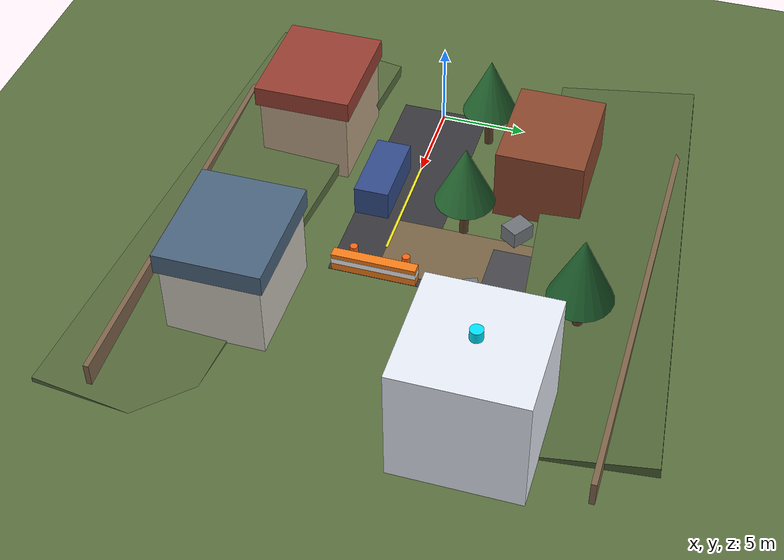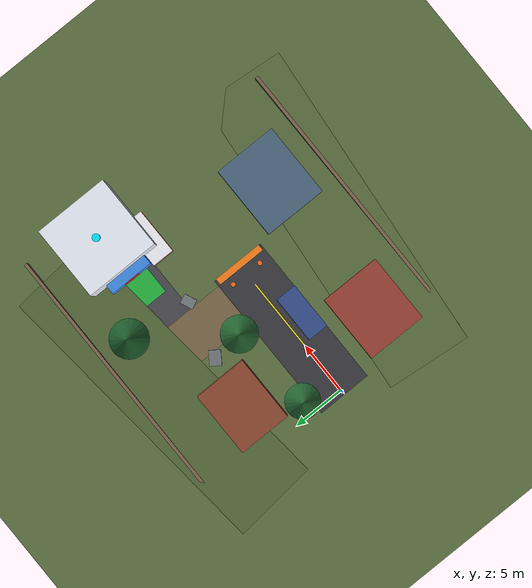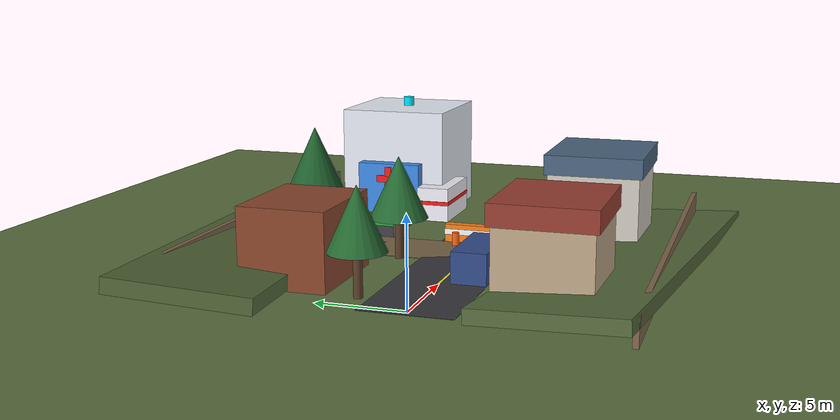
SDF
<sdf version="1.8">
 <world name="outskirts_terrain_world">
  <physics name="1ms" type="ode">
   <max_step_size>0.004</max_step_size>
   <real_time_factor>1.0</real_time_factor>
   <real_time_update_rate>250</real_time_update_rate>
   <ode>
    <solver><type>quick</type><iters>50</iters><sor>1.3</sor></solver>
    <constraints>
     <cfm>0.00001</cfm>
     <erp>0.2</erp>
     <contact_max_correcting_vel>100.0</contact_max_correcting_vel>
     <contact_surface_layer>0.001</contact_surface_layer>
    </constraints>
   </ode>
  </physics>
  <plugin filename="gz-sim-physics-system" name="gz::sim::systems::Physics"/>
  <plugin filename="gz-sim-user-commands-system" name="gz::sim::systems::UserCommands"/>
  <plugin filename="gz-sim-scene-broadcaster-system" name="gz::sim::systems::SceneBroadcaster"/>
  <plugin filename="gz-sim-sensors-system" name="gz::sim::systems::Sensors">
   <render_engine>ogre</render_engine>
  </plugin>
  <plugin filename="gz-sim-imu-system" name="gz::sim::systems::Imu"/>
  <scene>
   <ambient>0.65 0.70 0.75 1.0</ambient>
   <background>0.55 0.75 0.92 1.0</background>
   <shadows>true</shadows>
   <grid>false</grid>
  </scene>
  <light type="directional" name="sun">
   <pose>15 20 40 0 0.75 0.55</pose>
   <diffuse>0.98 0.95 0.88 1.0</diffuse>
   <specular>0.4 0.4 0.4 1.0</specular>
   <direction>-0.5 0.3 -0.9</direction>
  </light>
  <model name="base_outskirts_ground">
   <static>true</static>
   <link name="link">
    <collision name="col">
     <geometry><plane><normal>0 0 1</normal><size>120 120</size></plane></geometry>
     <surface><friction><ode><mu>0.9</mu><mu2>0.9</mu2></ode></friction></surface>
    </collision>
    <visual name="vis">
     <geometry><plane><normal>0 0 1</normal><size>120 120</size></plane></geometry>
     <material><ambient>0.32 0.40 0.22 1.0</ambient><diffuse>0.36 0.44 0.25 1.0</diffuse></material>
    </visual>
   </link>
  </model>
  <model name="terrain_ridge_north">
   <static>true</static>
   <pose>10.0 12.0 0.45 0.08 0.04 0.1</pose>
   <link name="link">
    <collision name="col"><geometry><box><size>28.0 8.0 0.9</size></box></geometry></collision>
    <visual name="vis">
     <geometry><box><size>28.0 8.0 0.9</size></box></geometry>
     <material><ambient>0.28 0.36 0.20 1.0</ambient><diffuse>0.32 0.40 0.22 1.0</diffuse></material>
    </visual>
   </link>
  </model>
  <model name="terrain_ridge_south">
   <static>true</static>
   <pose>12.0 -9.0 0.40 -0.06 0.05 -0.1</pose>
   <link name="link">
    <collision name="col"><geometry><box><size>30.0 8.0 0.8</size></box></geometry></collision>
    <visual name="vis">
     <geometry><box><size>30.0 8.0 0.8</size></box></geometry>
     <material><ambient>0.30 0.38 0.22 1.0</ambient><diffuse>0.34 0.42 0.24 1.0</diffuse></material>
    </visual>
   </link>
  </model>
  <model name="main_road_segment1">
   <static>true</static>
   <pose>7.0 0.0 0.01 0 0 0</pose>
   <link name="link">
    <collision name="col"><geometry><box><size>15.0 5.2 0.02</size></box></geometry></collision>
    <visual name="vis">
     <geometry><box><size>15.0 5.2 0.02</size></box></geometry>
     <material><ambient>0.18 0.18 0.20 1.0</ambient><diffuse>0.22 0.22 0.24 1.0</diffuse></material>
    </visual>
   </link>
  </model>
  <model name="road_centerline_1">
   <static>true</static>
   <pose>6.0 0.0 0.02 0 0 0</pose>
   <link name="link">
    <visual name="vis">
     <geometry><box><size>12.0 0.15 0.005</size></box></geometry>
     <material><ambient>0.9 0.85 0.1 1.0</ambient><diffuse>0.95 0.9 0.1 1.0</diffuse></material>
    </visual>
   </link>
  </model>
  <model name="north_trail_bypass">
   <static>true</static>
   <pose>11.8 4.5 0.01 0 0 1.5708</pose>
   <link name="link">
    <collision name="col"><geometry><box><size>9.0 4.2 0.02</size></box></geometry></collision>
    <visual name="vis">
     <geometry><box><size>9.0 4.2 0.02</size></box></geometry>
     <material><ambient>0.42 0.35 0.24 1.0</ambient><diffuse>0.48 0.40 0.28 1.0</diffuse></material>
    </visual>
   </link>
  </model>
  <model name="hospital_approach_driveway">
   <static>true</static>
   <pose>16.0 8.0 0.01 0 0 0</pose>
   <link name="link">
    <collision name="col"><geometry><box><size>11.0 4.4 0.02</size></box></geometry></collision>
    <visual name="vis">
     <geometry><box><size>11.0 4.4 0.02</size></box></geometry>
     <material><ambient>0.24 0.24 0.26 1.0</ambient><diffuse>0.28 0.28 0.30 1.0</diffuse></material>
    </visual>
   </link>
  </model>
  <model name="hospital_outpost_facility">
   <static>true</static>
   <pose>23.5 8.0 0.0 0 0 0</pose>
   <link name="main_building">
    <pose>0 0 3.5 0 0 0</pose>
    <collision name="col"><geometry><box><size>7.0 7.0 7.0</size></box></geometry></collision>
    <visual name="vis">
     <geometry><box><size>7.0 7.0 7.0</size></box></geometry>
     <material><ambient>0.88 0.90 0.94 1.0</ambient><diffuse>0.92 0.94 0.98 1.0</diffuse></material>
    </visual>
   </link>
   <link name="portico">
    <pose>-3.8 0 1.8 0 0 0</pose>
    <collision name="col"><geometry><box><size>1.2 4.2 3.6</size></box></geometry></collision>
    <visual name="vis">
     <geometry><box><size>1.2 4.2 3.6</size></box></geometry>
     <material><ambient>0.2 0.45 0.8 1.0</ambient><diffuse>0.25 0.55 0.9 1.0</diffuse></material>
    </visual>
   </link>
   <link name="red_cross_h">
    <pose>-4.45 0 2.6 0 0 0</pose>
    <visual name="vis">
     <geometry><box><size>0.08 1.6 0.45</size></box></geometry>
     <material>
      <ambient>1.0 0.1 0.1 1.0</ambient>
      <diffuse>1.0 0.1 0.1 1.0</diffuse>
      <emissive>0.6 0.0 0.0 1.0</emissive>
     </material>
    </visual>
   </link>
   <link name="red_cross_v">
    <pose>-4.45 0 2.6 0 0 0</pose>
    <visual name="vis">
     <geometry><box><size>0.08 0.45 1.6</size></box></geometry>
     <material>
      <ambient>1.0 0.1 0.1 1.0</ambient>
      <diffuse>1.0 0.1 0.1 1.0</diffuse>
      <emissive>0.6 0.0 0.0 1.0</emissive>
     </material>
    </visual>
   </link>
   <link name="roof_beacon">
    <pose>0 0 7.3 0 0 0</pose>
    <visual name="vis">
     <geometry><cylinder><radius>0.35</radius><length>0.6</length></cylinder></geometry>
     <material>
      <ambient>0.0 0.8 1.0 1.0</ambient>
      <diffuse>0.0 0.9 1.0 1.0</diffuse>
      <emissive>0.8 0.8 1.0 1.0</emissive>
     </material>
    </visual>
   </link>
  </model>
  <model name="hospital_dropoff_pad">
   <static>true</static>
   <pose>18.0 8.0 0.02 0 0 0</pose>
   <link name="link">
    <visual name="vis">
     <geometry><box><size>3.0 3.0 0.01</size></box></geometry>
     <material><ambient>0.1 0.6 0.2 1.0</ambient><diffuse>0.15 0.7 0.25 1.0</diffuse></material>
    </visual>
   </link>
  </model>
  <model name="parked_ambulance">
   <static>true</static>
   <pose>21.0 4.8 1.1 0 0 0</pose>
   <link name="body">
    <collision name="col"><geometry><box><size>4.4 2.1 2.2</size></box></geometry></collision>
    <visual name="vis">
     <geometry><box><size>4.4 2.1 2.2</size></box></geometry>
     <material><ambient>0.92 0.92 0.94 1.0</ambient><diffuse>0.95 0.95 0.98 1.0</diffuse></material>
    </visual>
   </link>
   <link name="red_stripe">
    <pose>0 0 0.1 0 0 0</pose>
    <visual name="vis">
     <geometry><box><size>4.45 2.15 0.25</size></box></geometry>
     <material><ambient>0.9 0.1 0.1 1.0</ambient><diffuse>0.95 0.1 0.1 1.0</diffuse></material>
    </visual>
   </link>
  </model>
  <model name="roadblock_barricade">
   <static>true</static>
   <pose>14.2 0.0 0.55 0 0 0</pose>
   <link name="link">
    <collision name="col"><geometry><box><size>0.6 4.8 1.1</size></box></geometry></collision>
    <visual name="vis">
     <geometry><box><size>0.6 4.8 1.1</size></box></geometry>
     <material><ambient>0.95 0.45 0.05 1.0</ambient><diffuse>0.98 0.50 0.10 1.0</diffuse></material>
    </visual>
   </link>
   <link name="hazard_stripes">
    <pose>0 0 0.1 0 0 0</pose>
    <visual name="vis">
     <geometry><box><size>0.62 4.82 0.35</size></box></geometry>
     <material><ambient>0.95 0.95 0.95 1.0</ambient><diffuse>0.98 0.98 0.98 1.0</diffuse></material>
    </visual>
   </link>
  </model>
  <model name="traffic_cone_1">
   <static>true</static>
   <pose>13.2 1.5 0.40 0 0 0</pose>
   <link name="link">
    <collision name="col">
     <geometry><cylinder><radius>0.22</radius><length>0.80</length></cylinder></geometry>
    </collision>
    <visual name="vis">
     <geometry><cylinder><radius>0.22</radius><length>0.80</length></cylinder></geometry>
     <material><ambient>0.95 0.35 0.05 1.0</ambient><diffuse>0.98 0.40 0.08 1.0</diffuse></material>
    </visual>
   </link>
  </model>
  <model name="traffic_cone_2">
   <static>true</static>
   <pose>13.2 -1.5 0.40 0 0 0</pose>
   <link name="link">
    <collision name="col">
     <geometry><cylinder><radius>0.22</radius><length>0.80</length></cylinder></geometry>
    </collision>
    <visual name="vis">
     <geometry><cylinder><radius>0.22</radius><length>0.80</length></cylinder></geometry>
     <material><ambient>0.95 0.35 0.05 1.0</ambient><diffuse>0.98 0.40 0.08 1.0</diffuse></material>
    </visual>
   </link>
  </model>
  <model name="cottage_1">
   <static>true</static>
   <pose>4.0 -6.5 2.2 0 0 0</pose>
   <link name="body">
    <collision name="col"><geometry><box><size>6.0 5.2 4.4</size></box></geometry></collision>
    <visual name="vis">
     <geometry><box><size>6.0 5.2 4.4</size></box></geometry>
     <material><ambient>0.72 0.62 0.50 1.0</ambient><diffuse>0.76 0.66 0.54 1.0</diffuse></material>
    </visual>
   </link>
   <link name="roof">
    <pose>0 0 2.8 0 0 0</pose>
    <visual name="vis">
     <geometry><box><size>6.4 5.6 1.2</size></box></geometry>
     <material><ambient>0.55 0.22 0.18 1.0</ambient><diffuse>0.60 0.25 0.20 1.0</diffuse></material>
    </visual>
   </link>
  </model>
  <model name="cottage_2">
   <static>true</static>
   <pose>18.0 -6.5 2.2 0 0 0</pose>
   <link name="body">
    <collision name="col"><geometry><box><size>6.5 5.5 4.4</size></box></geometry></collision>
    <visual name="vis">
     <geometry><box><size>6.5 5.5 4.4</size></box></geometry>
     <material><ambient>0.78 0.76 0.72 1.0</ambient><diffuse>0.82 0.80 0.76 1.0</diffuse></material>
    </visual>
   </link>
   <link name="roof">
    <pose>0 0 2.8 0 0 0</pose>
    <visual name="vis">
     <geometry><box><size>6.9 5.9 1.2</size></box></geometry>
     <material><ambient>0.25 0.35 0.45 1.0</ambient><diffuse>0.30 0.40 0.50 1.0</diffuse></material>
    </visual>
   </link>
  </model>
  <model name="barn_workshop">
   <static>true</static>
   <pose>4.5 7.5 2.2 0 0 0</pose>
   <link name="body">
    <collision name="col"><geometry><box><size>6.2 5.0 4.4</size></box></geometry></collision>
    <visual name="vis">
     <geometry><box><size>6.2 5.0 4.4</size></box></geometry>
     <material><ambient>0.50 0.25 0.15 1.0</ambient><diffuse>0.55 0.28 0.18 1.0</diffuse></material>
    </visual>
   </link>
  </model>
  <model name="parked_pickup">
   <static>true</static>
   <pose>7.5 -1.6 0.9 0 0 0</pose>
   <link name="body">
    <collision name="col"><geometry><box><size>4.5 2.0 1.8</size></box></geometry></collision>
    <visual name="vis">
     <geometry><box><size>4.5 2.0 1.8</size></box></geometry>
     <material><ambient>0.15 0.25 0.45 1.0</ambient><diffuse>0.20 0.30 0.55 1.0</diffuse></material>
    </visual>
   </link>
  </model>
  <model name="pine_tree_1">
   <static>true</static>
   <pose>1.5 3.2 0 0 0 0</pose>
   <link name="trunk">
    <pose>0 0 1.5 0 0 0</pose>
    <collision name="col">
     <geometry><cylinder><radius>0.25</radius><length>3.0</length></cylinder></geometry>
    </collision>
    <visual name="vis">
     <geometry><cylinder><radius>0.25</radius><length>3.0</length></cylinder></geometry>
     <material><ambient>0.32 0.22 0.14 1.0</ambient><diffuse>0.36 0.25 0.16 1.0</diffuse></material>
    </visual>
   </link>
   <link name="foliage">
    <pose>0 0 4.2 0 0 0</pose>
    <visual name="vis">
     <geometry><cone><radius>1.6</radius><length>3.5</length></cone></geometry>
     <material><ambient>0.12 0.35 0.16 1.0</ambient><diffuse>0.15 0.42 0.20 1.0</diffuse></material>
    </visual>
   </link>
  </model>
  <model name="pine_tree_2">
   <static>true</static>
   <pose>9.5 3.8 0 0 0 0</pose>
   <link name="trunk">
    <pose>0 0 1.5 0 0 0</pose>
    <collision name="col">
     <geometry><cylinder><radius>0.25</radius><length>3.0</length></cylinder></geometry>
    </collision>
    <visual name="vis">
     <geometry><cylinder><radius>0.25</radius><length>3.0</length></cylinder></geometry>
     <material><ambient>0.32 0.22 0.14 1.0</ambient><diffuse>0.36 0.25 0.16 1.0</diffuse></material>
    </visual>
   </link>
   <link name="foliage">
    <pose>0 0 4.2 0 0 0</pose>
    <visual name="vis">
     <geometry><cone><radius>1.7</radius><length>3.6</length></cone></geometry>
     <material><ambient>0.12 0.35 0.16 1.0</ambient><diffuse>0.15 0.42 0.20 1.0</diffuse></material>
    </visual>
   </link>
  </model>
  <model name="pine_tree_3">
   <static>true</static>
   <pose>15.2 11.5 0 0 0 0</pose>
   <link name="trunk">
    <pose>0 0 1.5 0 0 0</pose>
    <collision name="col">
     <geometry><cylinder><radius>0.28</radius><length>3.0</length></cylinder></geometry>
    </collision>
    <visual name="vis">
     <geometry><cylinder><radius>0.28</radius><length>3.0</length></cylinder></geometry>
     <material><ambient>0.32 0.22 0.14 1.0</ambient><diffuse>0.36 0.25 0.16 1.0</diffuse></material>
    </visual>
   </link>
   <link name="foliage">
    <pose>0 0 4.5 0 0 0</pose>
    <visual name="vis">
     <geometry><cone><radius>1.8</radius><length>4.0</length></cone></geometry>
     <material><ambient>0.10 0.32 0.14 1.0</ambient><diffuse>0.12 0.38 0.18 1.0</diffuse></material>
    </visual>
   </link>
  </model>
  <model name="granite_boulder_1">
   <static>true</static>
   <pose>14.5 5.5 0.45 0 0 0.4</pose>
   <link name="link">
    <collision name="col"><geometry><box><size>1.2 0.9 0.9</size></box></geometry></collision>
    <visual name="vis">
     <geometry><box><size>1.2 0.9 0.9</size></box></geometry>
     <material><ambient>0.40 0.42 0.44 1.0</ambient><diffuse>0.46 0.48 0.50 1.0</diffuse></material>
    </visual>
   </link>
  </model>
  <model name="granite_boulder_2">
   <static>true</static>
   <pose>9.2 6.8 0.50 0 0 -0.6</pose>
   <link name="link">
    <collision name="col"><geometry><box><size>1.4 1.1 1.0</size></box></geometry></collision>
    <visual name="vis">
     <geometry><box><size>1.4 1.1 1.0</size></box></geometry>
     <material><ambient>0.38 0.40 0.42 1.0</ambient><diffuse>0.44 0.46 0.48 1.0</diffuse></material>
    </visual>
   </link>
  </model>
  <model name="perimeter_fence_north">
   <static>true</static>
   <pose>12.0 14.5 0.75 0 0 0</pose>
   <link name="link">
    <collision name="col"><geometry><box><size>28.0 0.3 1.5</size></box></geometry></collision>
    <visual name="vis">
     <geometry><box><size>28.0 0.3 1.5</size></box></geometry>
     <material><ambient>0.45 0.35 0.25 1.0</ambient><diffuse>0.50 0.40 0.30 1.0</diffuse></material>
    </visual>
   </link>
  </model>
  <model name="perimeter_fence_south">
   <static>true</static>
   <pose>12.0 -11.5 0.75 0 0 0</pose>
   <link name="link">
    <collision name="col"><geometry><box><size>28.0 0.3 1.5</size></box></geometry></collision>
    <visual name="vis">
     <geometry><box><size>28.0 0.3 1.5</size></box></geometry>
     <material><ambient>0.45 0.35 0.25 1.0</ambient><diffuse>0.50 0.40 0.30 1.0</diffuse></material>
    </visual>
   </link>
  </model>
 </world>
</sdf>
